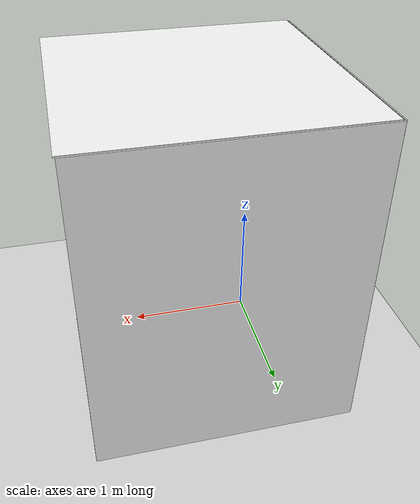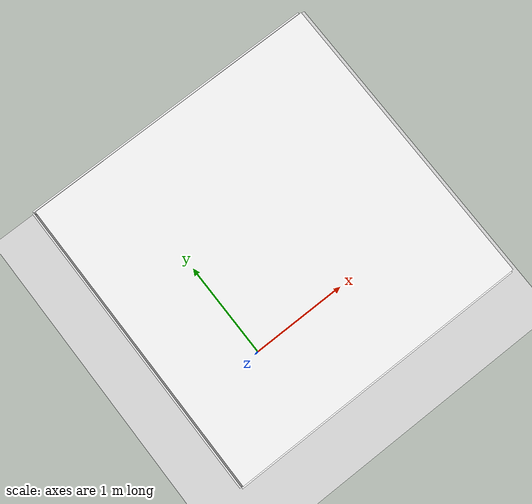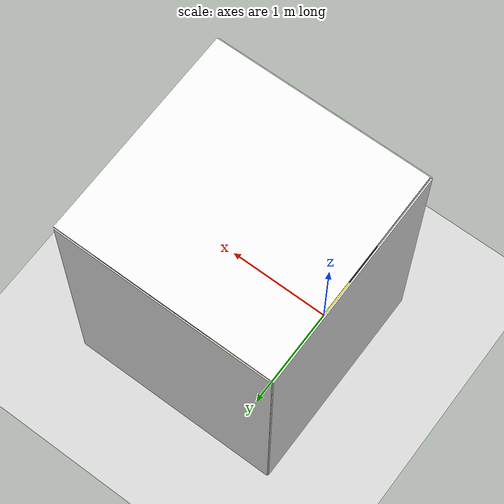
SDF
<sdf version="1.7">
 <world name="default">
  <light name="sun" type="directional">
   <pose>0 0 10 0 -0 0</pose>
   <diffuse>0.8 0.8 0.8 1</diffuse>
   <specular>0.2 0.2 0.2 1</specular>
   <attenuation>
    <range>1000</range>
    <constant>0.9</constant>
    <linear>0.01</linear>
    <quadratic>0.001</quadratic>
   </attenuation>
   <direction>-0.5 0.1 -0.9</direction>
   <spot><inner_angle>0</inner_angle><outer_angle>0</outer_angle><falloff>0</falloff></spot>
  </light>
  <model name="ground_plane">
   <static>1</static>
   <link name="link">
    <collision name="collision">
     <geometry><plane><normal>0 0 1</normal><size>100 100</size></plane></geometry>
     <surface><friction><ode><mu>100</mu><mu2>50</mu2></ode></friction></surface>
    </collision>
    <visual name="visual">
     <cast_shadows>0</cast_shadows>
     <geometry><plane><normal>0 0 1</normal><size>100 100</size></plane></geometry>
     <material>
      <script><uri>file://media/materials/scripts/gazebo.material</uri><name>Gazebo/Grey</name></script>
     </material>
    </visual>
   </link>
  </model>
  <gravity>0 0 -9.8</gravity>
  <magnetic_field>6e-06 2.3e-05 -4.2e-05</magnetic_field>
  <atmosphere type="adiabatic"/>
  <physics type="ode">
   <max_step_size>0.001</max_step_size>
   <real_time_factor>1</real_time_factor>
   <real_time_update_rate>1000</real_time_update_rate>
  </physics>
  <scene><ambient>0.4 0.4 0.4 1</ambient><background>0.7 0.7 0.7 1</background><shadows>1</shadows></scene>
  <spherical_coordinates>
   <surface_model>EARTH_WGS84</surface_model>
   <latitude_deg>0</latitude_deg>
   <longitude_deg>0</longitude_deg>
   <elevation>0</elevation>
   <heading_deg>0</heading_deg>
  </spherical_coordinates>
  <model name="floor_iros">
   <static>1</static>
   <link name="link">
    <collision name="collision_wall"><geometry><box><size>2 0.01 2</size></box></geometry></collision>
    <visual name="visual_wall">
     <geometry><box><size>2 0.01 2</size></box></geometry>
     <material>
      <script><uri>file://media/materials/scripts/gazebo.material</uri><name>Gazebo/White</name></script>
     </material>
    </visual>
   </link>
   <pose>0.533573 0.470273 1.6e-05 1.5708 -0 0</pose>
  </model>
  <model name="robot_stand_iros">
   <static>1</static>
   <link name="link">
    <inertial>
     <mass>1</mass>
     <inertia><ixx>0.083</ixx><ixy>0</ixy><ixz>0</ixz><iyy>0.083</iyy><iyz>0</iyz><izz>0.083</izz></inertia>
    </inertial>
    <collision name="collision"><geometry><box><size>0.7 0.72 0.775</size></box></geometry></collision>
    <visual name="visual">
     <geometry><box><size>0.7 0.72 0.775</size></box></geometry>
     <material>
      <script><uri>file://media/materials/scripts/gazebo.material</uri><name>Gazebo/Black</name></script>
     </material>
    </visual>
   </link>
   <pose>-0.10525 -0.170371 0.362657 0 -0 0</pose>
  </model>
  <model name="demonstration_table">
   <static>1</static>
   <link name="link">
    <inertial>
     <mass>1</mass>
     <inertia><ixx>0.083</ixx><ixy>0</ixy><ixz>0</ixz><iyy>0.083</iyy><iyz>0</iyz><izz>0.083</izz></inertia>
    </inertial>
    <collision name="collision"><geometry><box><size>1.2 0.679361 1.3548</size></box></geometry></collision>
    <visual name="visual">
     <geometry><box><size>1.2 0.679361 1.3548</size></box></geometry>
     <material>
      <script><uri>file://media/materials/scripts/gazebo.material</uri><name>Gazebo/Black</name></script>
     </material>
    </visual>
   </link>
   <pose>0.933723 1.11762 0.672606 0 -0 0</pose>
  </model>
  <model name="robot_demo_table">
   <static>1</static>
   <link name="link">
    <inertial>
     <mass>1</mass>
     <inertia><ixx>0.083</ixx><ixy>0</ixy><ixz>0</ixz><iyy>0.083</iyy><iyz>0</iyz><izz>0.083</izz></inertia>
    </inertial>
    <collision name="collision"><geometry><box><size>1.06428 1.13938 0.696191</size></box></geometry></collision>
    <visual name="visual">
     <geometry><box><size>1.06428 1.13938 0.696191</size></box></geometry>
     <material>
      <script><uri>file://media/materials/scripts/gazebo.material</uri><name>Gazebo/Red</name></script>
     </material>
    </visual>
   </link>
   <pose>0.802113 0.119157 0.36088 0 -0 0</pose>
  </model>
  <model name="human">
   <static>1</static>
   <link name="link">
    <collision name="collision_human">
     <geometry><box><size>1.75 1.06055 0.669824</size></box></geometry>
    </collision>
    <visual name="visual_human">
     <geometry><box><size>1.75 1.06055 0.669824</size></box></geometry>
     <material>
      <script><uri>file://media/materials/scripts/gazebo.material</uri><name>Gazebo/Yellow</name></script>
     </material>
    </visual>
   </link>
   <pose>-0.070197 0.775416 0.875 -3.14159 1.57079 -3.14159</pose>
  </model>
  <model name="wall_iros">
   <static>1</static>
   <link name="link">
    <collision name="collision_wall"><geometry><box><size>2 0.01 2.5</size></box></geometry></collision>
    <visual name="visual_wall">
     <geometry><box><size>2 0.01 2.5</size></box></geometry>
     <material>
      <script><uri>file://media/materials/scripts/gazebo.material</uri><name>Gazebo/White</name></script>
     </material>
    </visual>
   </link>
   <pose>0.533738 -0.538245 1.25 0 -0 0</pose>
  </model>
  <model name="wall_iros_0">
   <static>1</static>
   <link name="link">
    <collision name="collision_wall"><geometry><box><size>2 0.01 2.5</size></box></geometry></collision>
    <visual name="visual_wall">
     <geometry><box><size>2 0.01 2.5</size></box></geometry>
     <material>
      <script><uri>file://media/materials/scripts/gazebo.material</uri><name>Gazebo/White</name></script>
     </material>
    </visual>
   </link>
   <pose>0.532697 1.4757 1.25 0 -0 0</pose>
  </model>
  <model name="wall_iros_1">
   <static>1</static>
   <link name="link">
    <collision name="collision_wall"><geometry><box><size>2 0.01 2.5</size></box></geometry></collision>
    <visual name="visual_wall">
     <geometry><box><size>2 0.01 2.5</size></box></geometry>
     <material>
      <script><uri>file://media/materials/scripts/gazebo.material</uri><name>Gazebo/White</name></script>
     </material>
    </visual>
   </link>
   <pose>-0.471526 0.468582 1.25 0 -0 1.5708</pose>
  </model>
  <model name="floor_iros_0">
   <static>1</static>
   <link name="link">
    <collision name="collision_wall"><geometry><box><size>2 0.01 2</size></box></geometry></collision>
    <visual name="visual_wall">
     <geometry><box><size>2 0.01 2</size></box></geometry>
     <material>
      <script><uri>file://media/materials/scripts/gazebo.material</uri><name>Gazebo/White</name></script>
     </material>
    </visual>
   </link>
   <pose>0.545317 0.466726 2.5 1.5708 -0 0</pose>
  </model>
 </world>
</sdf>
